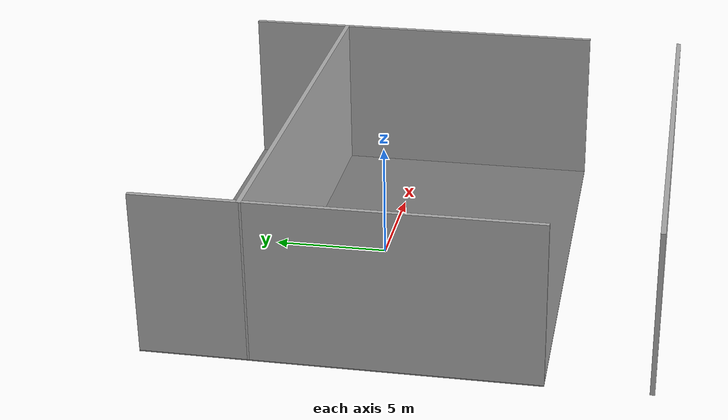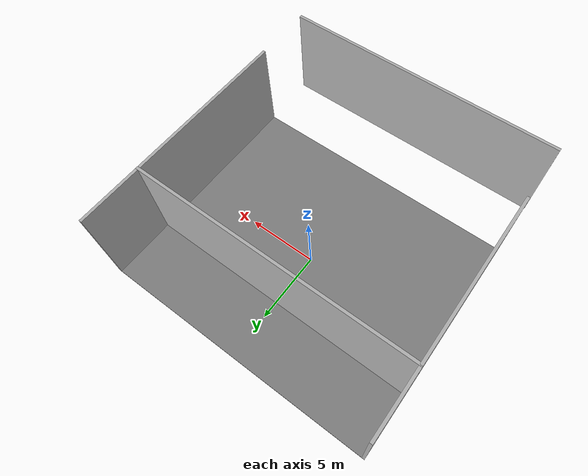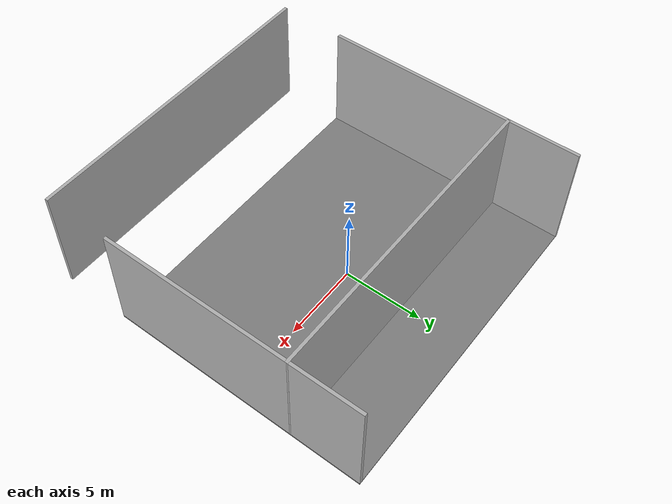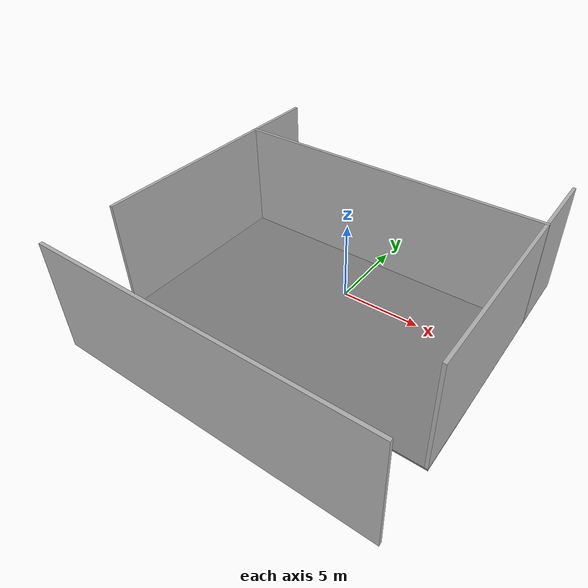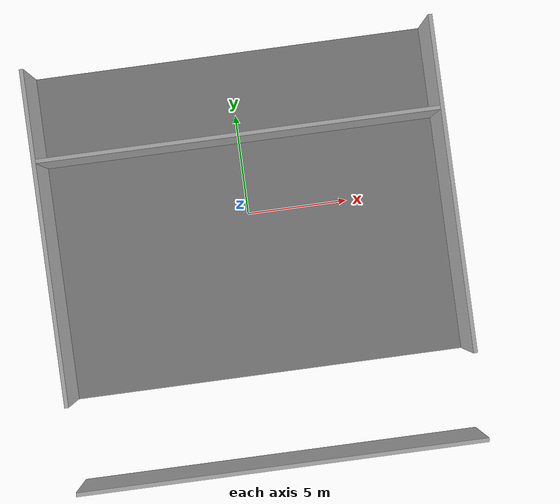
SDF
<?xml version="1.0" ?>
<sdf version="1.7">
    <world name="factory_floor">
        <!-- Lighting -->
        <light type="directional" name="sun">
            <cast_shadows>true</cast_shadows>
            <pose>0 0 10 0 0 0</pose>
            <diffuse>0.8 0.8 0.8 1</diffuse>
            <specular>0.2 0.2 0.2 1</specular>
            <direction>-0.5 0.1 -1</direction>
        </light>

        <!-- Ground Plane (20m x 16.4m) -->
        <model name="factory_floor">
            <static>true</static>
            <pose>0 0 0 0 0 0</pose>
            <link name="link">
                <visual name="visual">
                    <geometry>
                        <box>
                            <size>20 16.4 0.1</size>
                        </box>
                    </geometry>
                    <material>
                        <ambient>0.5 0.5 0.5 1</ambient>
                        <diffuse>0.5 0.5 0.5 1</diffuse>
                    </material>
                </visual>
                <collision name="collision">
                    <geometry>
                        <box>
                            <size>20 16.4 0.1</size>
                        </box>
                    </geometry>
                </collision>
            </link>
        </model>

        <!-- Walls -->
        <model name="wall_left">
            <static>true</static>
            <pose>-9.9 0 3.5 0 0 0</pose>
            <link name="link">
                <visual name="visual">
                    <geometry>
                        <box>
                            <size>0.2 16.4 7</size>
                        </box>
                    </geometry>
                    <material>
                        <ambient>0.7 0.7 0.7 1</ambient>
                        <diffuse>0.7 0.7 0.7 1</diffuse>
                    </material>
                </visual>
                <collision name="collision">
                    <geometry>
                        <box>
                            <size>0.2 16.4 7</size>
                        </box>
                    </geometry>
                </collision>
            </link>
        </model>

        <model name="wall_right">
            <static>true</static>
            <pose>9.9 0 3.5 0 0 0</pose>
            <link name="link">
                <visual name="visual">
                    <geometry>
                        <box>
                            <size>0.2 16.4 7</size>
                        </box>
                    </geometry>
                    <material>
                        <ambient>0.7 0.7 0.7 1</ambient>
                        <diffuse>0.7 0.7 0.7 1</diffuse>
                    </material>
                </visual>
                <collision name="collision">
                    <geometry>
                        <box>
                            <size>0.2 16.4 7</size>
                        </box>
                    </geometry>
                </collision>
            </link>
        </model>

        <model name="wall_top">
            <static>true</static>
            <pose>0 3.72 3.5 0 0 1.57</pose>
            <link name="link">
                <visual name="visual">
                    <geometry>
                        <box>
                            <size>0.2 20 7</size>
                        </box>
                    </geometry>
                    <material>
                        <ambient>0.7 0.7 0.7 1</ambient>
                        <diffuse>0.7 0.7 0.7 1</diffuse>
                    </material>
                </visual>
                <collision name="collision">
                    <geometry>
                        <box>
                            <size>0.2 20 7</size>
                        </box>
                    </geometry>
                </collision>
            </link>
        </model>

        <model name="wall_bottom">
            <static>true</static>
            <pose>0 -12.4 3.5 0 0 1.57</pose>
            <link name="link">
                <visual name="visual">
                    <geometry>
                        <box>
                            <size>0.2 20 7</size>
                        </box>
                    </geometry>
                    <material>
                        <ambient>0.7 0.7 0.7 1</ambient>
                        <diffuse>0.7 0.7 0.7 1</diffuse>
                    </material>
                </visual>
                <collision name="collision">
                    <geometry>
                        <box>
                            <size>0.2 20 7</size>
                        </box>
                    </geometry>
                </collision>
            </link>
        </model>
    </world>
</sdf>
